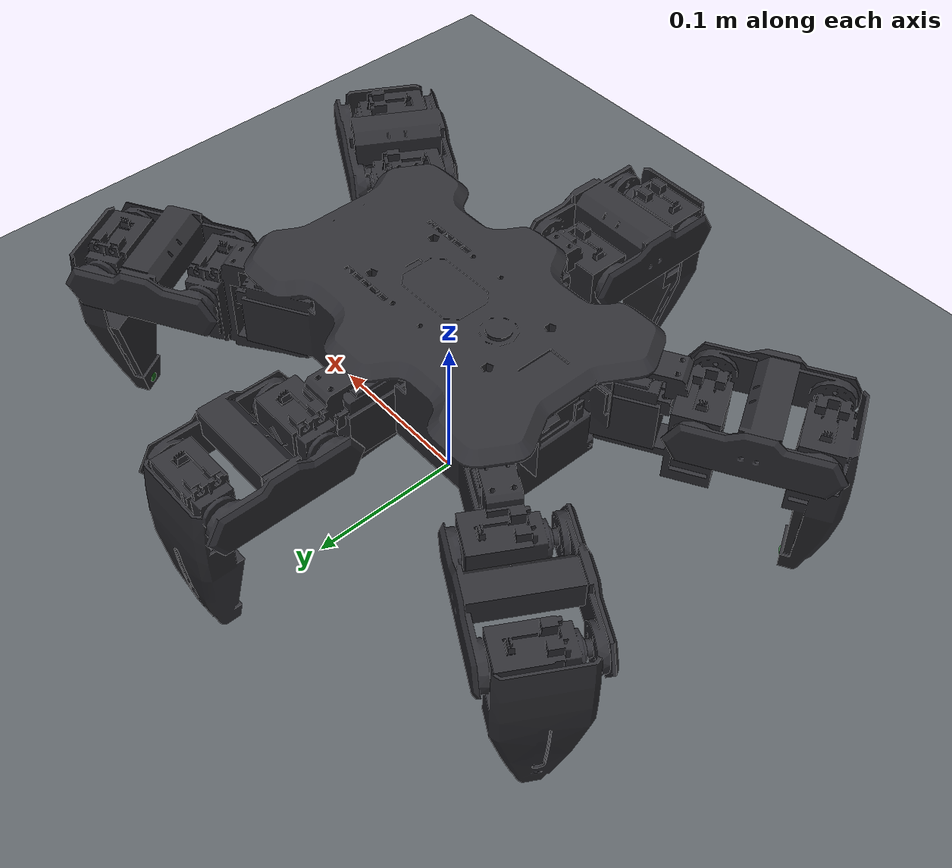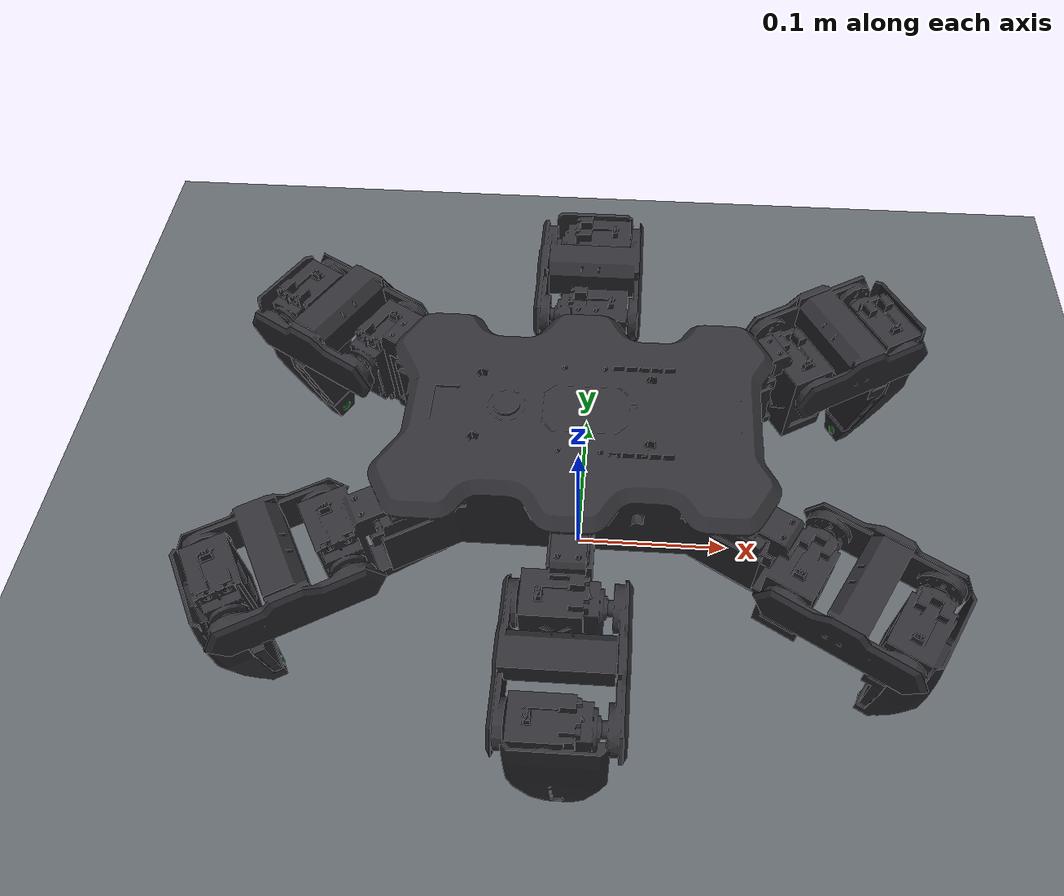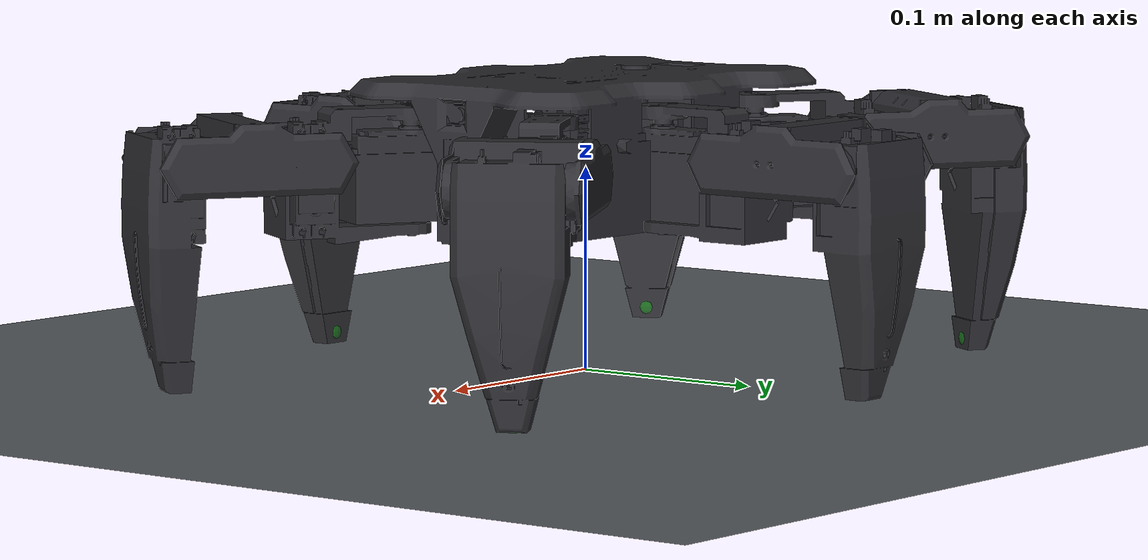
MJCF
<mujoco model="esapode">
  <!-- Generato da tools/genera_modelli.py (versione 2.1.2, Hexapod v2.1.0 v10): non modificare a mano. -->
  <compiler angle="radian" meshdir="../../robot/mesh" autolimits="true" />
  <option timestep="0.002" integrator="implicitfast" />
  <visual>
    <global offwidth="1280" offheight="720" />
  </visual>
  <custom>
    <numeric name="servo_stallo_nm" data="1.0787315" />
    <numeric name="servo_velocita_rad_s" data="7.4799825" />
    <numeric name="servo_smorzamento" data="0.14421578" />
    <numeric name="servo_kp" data="12.361352" />
    <numeric name="servo_semibanda_morta_rad" data="0.0039309217" />
    <numeric name="servo_saturazione_gradi" data="5" />
  </custom>
  <default>
    <default class="esapode">
      <!-- smorzamento = stallo / velocita a vuoto: la retta coppia-velocita del motore a piena tensione; kp = stallo / 5 gradi (saturazione, S); forcerange = stallo a 6 V; banda morta in sim/servo.py -->
      <joint type="hinge" damping="0.144216" armature="0" />
      <position kp="12.3614" forcerange="-1.07873 1.07873" />
      <geom friction="0.8 0.005 0.0001" solref="0.005 1" />
      <default class="visivo">
        <geom type="mesh" contype="0" conaffinity="0" group="2" density="0" material="scuro" />
      </default>
      <default class="urto">
        <geom group="3" rgba="0.9 0.5 0.1 0.4" />
      </default>
      <default class="piede">
        <geom group="3" rgba="1 0.4 0 1" />
      </default>
    </default>
  </default>
  <asset>
    <mesh name="corpo" file="corpo.stl" scale="0.001 0.001 0.001" />
    <mesh name="coxa" file="coxa.stl" scale="0.001 0.001 0.001" />
    <mesh name="femore" file="femore.stl" scale="0.001 0.001 0.001" />
    <mesh name="tibia" file="tibia.stl" scale="0.001 0.001 0.001" />
    <material name="scuro" rgba="0.18 0.18 0.2 1" />
    <texture name="griglia" type="2d" builtin="checker" rgb1="0.32 0.34 0.36" rgb2="0.42 0.44 0.46" width="512" height="512" />
    <material name="pavimento" texture="griglia" texrepeat="10 10" reflectance="0" />
  </asset>
  <worldbody>
    <light name="sole" pos="0 0 2" dir="0 0 -1" directional="true" />
    <geom name="pavimento" type="plane" size="0 0 0.05" material="pavimento" friction="0.8 0.005 0.0001" solref="0.005 1" />
    <body name="corpo" pos="0 0 0.11" childclass="esapode">
      <freejoint name="corpo" />
      <inertial pos="0.004479 0.000008 -0.010686" mass="1.42791" fullinertia="0.0027517 0.00564966 0.00731684 -2.5292e-06 2.18234e-05 -9.17945e-08" />
      <geom name="mesh_corpo" class="visivo" mesh="corpo" />
      <geom name="chiglia" class="urto" type="box" pos="0.00015 0 -0.036675" size="0.08755 0.0347 0.004725" />
      <geom name="scafo" class="urto" type="box" pos="0.00015 0 -0.012475" size="0.08755 0.048 0.019475" />
      <geom name="carapace" class="urto" type="box" pos="0.002425 0 0.0215" size="0.099575 0.056 0.0145" />
      <geom name="lobo_AS" class="urto" type="cylinder" pos="0.08 0.044 0.0215" size="0.0323 0.0145" />
      <geom name="lobo_MS" class="urto" type="cylinder" pos="0 0.048 0.0215" size="0.0323 0.0145" />
      <geom name="lobo_PS" class="urto" type="cylinder" pos="-0.08 0.044 0.0215" size="0.0323 0.0145" />
      <geom name="lobo_AD" class="urto" type="cylinder" pos="0.08 -0.044 0.0215" size="0.0323 0.0145" />
      <geom name="lobo_MD" class="urto" type="cylinder" pos="0 -0.048 0.0215" size="0.0323 0.0145" />
      <geom name="lobo_PD" class="urto" type="cylinder" pos="-0.08 -0.044 0.0215" size="0.0323 0.0145" />
      <site name="imu" pos="0.0525 0 -0.0059" size="0.005" rgba="0 0.6 1 1" />
      <body name="coxa_AS" pos="0.08 0.044 0" quat="0.965925826 0 0 0.258819045">
        <inertial pos="0.046381 -0.001983 -0.009636" mass="0.09408" fullinertia="4.08107e-05 6.21611e-05 4.48324e-05 1.33817e-06 4.98159e-06 -5.71956e-07" />
        <joint name="g_coxa_AS" axis="0 0 1" range="-0.610865 0.610865" />
        <geom name="mesh_coxa_AS" class="visivo" mesh="coxa" />
        <geom name="coxa_culla_AS" class="urto" type="box" pos="0.054 0.00045 -0.01155" size="0.01345 0.0254 0.0268" />
        <body name="femore_AS" pos="0.055 0 0">
          <inertial pos="0.03256 0.003123 0.003408" mass="0.05442" fullinertia="3.75087e-05 3.19617e-05 6.25141e-05 1.18337e-08 -1.55199e-07 7.09479e-07" />
          <joint name="g_femore_AS" axis="0 -1 0" range="-0.855211 1.48353" />
          <geom name="mesh_femore_AS" class="visivo" mesh="femore" pos="-0.055 0 0" />
          <geom name="femore_A_AS" class="urto" type="capsule" fromto="0 0.02055 0 0.065 0.02055 0" size="0.013" />
          <geom name="femore_B_AS" class="urto" type="capsule" fromto="0 -0.02055 0 0.065 -0.02055 0" size="0.013" />
          <body name="tibia_AS" pos="0.065 0 0">
            <inertial pos="0.002576 -0.001438 -0.02751" mass="0.11189" fullinertia="0.000115708 0.000105128 2.36561e-05 -2.3414e-07 2.96651e-06 2.30464e-06" />
            <joint name="g_ginocchio_AS" axis="0 -1 0" range="-1.064651 1.570796" />
            <geom name="mesh_tibia_AS" class="visivo" mesh="tibia" pos="-0.12 0 0" />
            <geom name="tibia_culla_AS" class="urto" type="box" pos="0.003634 0 -0.01005" size="0.016084 0.02615 0.0283" />
            <geom name="tibia_stinco_AS" class="urto" type="capsule" fromto="0.003634 0 -0.03835 0 0 -0.094" size="0.0117" />
            <geom name="piede_AS" class="piede" type="sphere" pos="0 0 -0.1044" size="0.0056" />
            <site name="punta_AS" pos="0 0 -0.11" size="0.002" />
            <site name="contatto_AS" type="sphere" size="0.0066" pos="0 0 -0.1044" rgba="0 1 0 0.3" />
          </body>
        </body>
      </body>
      <body name="coxa_MS" pos="0 0.048 0" quat="0.707106781 0 0 0.707106781">
        <inertial pos="0.046381 -0.001983 -0.009636" mass="0.09408" fullinertia="4.08107e-05 6.21611e-05 4.48324e-05 1.33817e-06 4.98159e-06 -5.71956e-07" />
        <joint name="g_coxa_MS" axis="0 0 1" range="-0.610865 0.610865" />
        <geom name="mesh_coxa_MS" class="visivo" mesh="coxa" />
        <geom name="coxa_culla_MS" class="urto" type="box" pos="0.054 0.00045 -0.01155" size="0.01345 0.0254 0.0268" />
        <body name="femore_MS" pos="0.055 0 0">
          <inertial pos="0.03256 0.003123 0.003408" mass="0.05442" fullinertia="3.75087e-05 3.19617e-05 6.25141e-05 1.18337e-08 -1.55199e-07 7.09479e-07" />
          <joint name="g_femore_MS" axis="0 -1 0" range="-0.855211 1.48353" />
          <geom name="mesh_femore_MS" class="visivo" mesh="femore" pos="-0.055 0 0" />
          <geom name="femore_A_MS" class="urto" type="capsule" fromto="0 0.02055 0 0.065 0.02055 0" size="0.013" />
          <geom name="femore_B_MS" class="urto" type="capsule" fromto="0 -0.02055 0 0.065 -0.02055 0" size="0.013" />
          <body name="tibia_MS" pos="0.065 0 0">
            <inertial pos="0.002576 -0.001438 -0.02751" mass="0.11189" fullinertia="0.000115708 0.000105128 2.36561e-05 -2.3414e-07 2.96651e-06 2.30464e-06" />
            <joint name="g_ginocchio_MS" axis="0 -1 0" range="-1.064651 1.570796" />
            <geom name="mesh_tibia_MS" class="visivo" mesh="tibia" pos="-0.12 0 0" />
            <geom name="tibia_culla_MS" class="urto" type="box" pos="0.003634 0 -0.01005" size="0.016084 0.02615 0.0283" />
            <geom name="tibia_stinco_MS" class="urto" type="capsule" fromto="0.003634 0 -0.03835 0 0 -0.094" size="0.0117" />
            <geom name="piede_MS" class="piede" type="sphere" pos="0 0 -0.1044" size="0.0056" />
            <site name="punta_MS" pos="0 0 -0.11" size="0.002" />
            <site name="contatto_MS" type="sphere" size="0.0066" pos="0 0 -0.1044" rgba="0 1 0 0.3" />
          </body>
        </body>
      </body>
      <body name="coxa_PS" pos="-0.08 0.044 0" quat="0.258819045 0 0 0.965925826">
        <inertial pos="0.046381 -0.001983 -0.009636" mass="0.09408" fullinertia="4.08107e-05 6.21611e-05 4.48324e-05 1.33817e-06 4.98159e-06 -5.71956e-07" />
        <joint name="g_coxa_PS" axis="0 0 1" range="-0.610865 0.610865" />
        <geom name="mesh_coxa_PS" class="visivo" mesh="coxa" />
        <geom name="coxa_culla_PS" class="urto" type="box" pos="0.054 0.00045 -0.01155" size="0.01345 0.0254 0.0268" />
        <body name="femore_PS" pos="0.055 0 0">
          <inertial pos="0.03256 0.003123 0.003408" mass="0.05442" fullinertia="3.75087e-05 3.19617e-05 6.25141e-05 1.18337e-08 -1.55199e-07 7.09479e-07" />
          <joint name="g_femore_PS" axis="0 -1 0" range="-0.855211 1.48353" />
          <geom name="mesh_femore_PS" class="visivo" mesh="femore" pos="-0.055 0 0" />
          <geom name="femore_A_PS" class="urto" type="capsule" fromto="0 0.02055 0 0.065 0.02055 0" size="0.013" />
          <geom name="femore_B_PS" class="urto" type="capsule" fromto="0 -0.02055 0 0.065 -0.02055 0" size="0.013" />
          <body name="tibia_PS" pos="0.065 0 0">
            <inertial pos="0.002576 -0.001438 -0.02751" mass="0.11189" fullinertia="0.000115708 0.000105128 2.36561e-05 -2.3414e-07 2.96651e-06 2.30464e-06" />
            <joint name="g_ginocchio_PS" axis="0 -1 0" range="-1.064651 1.570796" />
            <geom name="mesh_tibia_PS" class="visivo" mesh="tibia" pos="-0.12 0 0" />
            <geom name="tibia_culla_PS" class="urto" type="box" pos="0.003634 0 -0.01005" size="0.016084 0.02615 0.0283" />
            <geom name="tibia_stinco_PS" class="urto" type="capsule" fromto="0.003634 0 -0.03835 0 0 -0.094" size="0.0117" />
            <geom name="piede_PS" class="piede" type="sphere" pos="0 0 -0.1044" size="0.0056" />
            <site name="punta_PS" pos="0 0 -0.11" size="0.002" />
            <site name="contatto_PS" type="sphere" size="0.0066" pos="0 0 -0.1044" rgba="0 1 0 0.3" />
          </body>
        </body>
      </body>
      <body name="coxa_AD" pos="0.08 -0.044 0" quat="0.965925826 0 0 -0.258819045">
        <inertial pos="0.046381 -0.001983 -0.009636" mass="0.09408" fullinertia="4.08107e-05 6.21611e-05 4.48324e-05 1.33817e-06 4.98159e-06 -5.71956e-07" />
        <joint name="g_coxa_AD" axis="0 0 1" range="-0.610865 0.610865" />
        <geom name="mesh_coxa_AD" class="visivo" mesh="coxa" />
        <geom name="coxa_culla_AD" class="urto" type="box" pos="0.054 0.00045 -0.01155" size="0.01345 0.0254 0.0268" />
        <body name="femore_AD" pos="0.055 0 0">
          <inertial pos="0.03256 0.003123 0.003408" mass="0.05442" fullinertia="3.75087e-05 3.19617e-05 6.25141e-05 1.18337e-08 -1.55199e-07 7.09479e-07" />
          <joint name="g_femore_AD" axis="0 -1 0" range="-0.855211 1.48353" />
          <geom name="mesh_femore_AD" class="visivo" mesh="femore" pos="-0.055 0 0" />
          <geom name="femore_A_AD" class="urto" type="capsule" fromto="0 0.02055 0 0.065 0.02055 0" size="0.013" />
          <geom name="femore_B_AD" class="urto" type="capsule" fromto="0 -0.02055 0 0.065 -0.02055 0" size="0.013" />
          <body name="tibia_AD" pos="0.065 0 0">
            <inertial pos="0.002576 -0.001438 -0.02751" mass="0.11189" fullinertia="0.000115708 0.000105128 2.36561e-05 -2.3414e-07 2.96651e-06 2.30464e-06" />
            <joint name="g_ginocchio_AD" axis="0 -1 0" range="-1.064651 1.570796" />
            <geom name="mesh_tibia_AD" class="visivo" mesh="tibia" pos="-0.12 0 0" />
            <geom name="tibia_culla_AD" class="urto" type="box" pos="0.003634 0 -0.01005" size="0.016084 0.02615 0.0283" />
            <geom name="tibia_stinco_AD" class="urto" type="capsule" fromto="0.003634 0 -0.03835 0 0 -0.094" size="0.0117" />
            <geom name="piede_AD" class="piede" type="sphere" pos="0 0 -0.1044" size="0.0056" />
            <site name="punta_AD" pos="0 0 -0.11" size="0.002" />
            <site name="contatto_AD" type="sphere" size="0.0066" pos="0 0 -0.1044" rgba="0 1 0 0.3" />
          </body>
        </body>
      </body>
      <body name="coxa_MD" pos="0 -0.048 0" quat="0.707106781 0 0 -0.707106781">
        <inertial pos="0.046381 -0.001983 -0.009636" mass="0.09408" fullinertia="4.08107e-05 6.21611e-05 4.48324e-05 1.33817e-06 4.98159e-06 -5.71956e-07" />
        <joint name="g_coxa_MD" axis="0 0 1" range="-0.610865 0.610865" />
        <geom name="mesh_coxa_MD" class="visivo" mesh="coxa" />
        <geom name="coxa_culla_MD" class="urto" type="box" pos="0.054 0.00045 -0.01155" size="0.01345 0.0254 0.0268" />
        <body name="femore_MD" pos="0.055 0 0">
          <inertial pos="0.03256 0.003123 0.003408" mass="0.05442" fullinertia="3.75087e-05 3.19617e-05 6.25141e-05 1.18337e-08 -1.55199e-07 7.09479e-07" />
          <joint name="g_femore_MD" axis="0 -1 0" range="-0.855211 1.48353" />
          <geom name="mesh_femore_MD" class="visivo" mesh="femore" pos="-0.055 0 0" />
          <geom name="femore_A_MD" class="urto" type="capsule" fromto="0 0.02055 0 0.065 0.02055 0" size="0.013" />
          <geom name="femore_B_MD" class="urto" type="capsule" fromto="0 -0.02055 0 0.065 -0.02055 0" size="0.013" />
          <body name="tibia_MD" pos="0.065 0 0">
            <inertial pos="0.002576 -0.001438 -0.02751" mass="0.11189" fullinertia="0.000115708 0.000105128 2.36561e-05 -2.3414e-07 2.96651e-06 2.30464e-06" />
            <joint name="g_ginocchio_MD" axis="0 -1 0" range="-1.064651 1.570796" />
            <geom name="mesh_tibia_MD" class="visivo" mesh="tibia" pos="-0.12 0 0" />
            <geom name="tibia_culla_MD" class="urto" type="box" pos="0.003634 0 -0.01005" size="0.016084 0.02615 0.0283" />
            <geom name="tibia_stinco_MD" class="urto" type="capsule" fromto="0.003634 0 -0.03835 0 0 -0.094" size="0.0117" />
            <geom name="piede_MD" class="piede" type="sphere" pos="0 0 -0.1044" size="0.0056" />
            <site name="punta_MD" pos="0 0 -0.11" size="0.002" />
            <site name="contatto_MD" type="sphere" size="0.0066" pos="0 0 -0.1044" rgba="0 1 0 0.3" />
          </body>
        </body>
      </body>
      <body name="coxa_PD" pos="-0.08 -0.044 0" quat="0.258819045 0 0 -0.965925826">
        <inertial pos="0.046381 -0.001983 -0.009636" mass="0.09408" fullinertia="4.08107e-05 6.21611e-05 4.48324e-05 1.33817e-06 4.98159e-06 -5.71956e-07" />
        <joint name="g_coxa_PD" axis="0 0 1" range="-0.610865 0.610865" />
        <geom name="mesh_coxa_PD" class="visivo" mesh="coxa" />
        <geom name="coxa_culla_PD" class="urto" type="box" pos="0.054 0.00045 -0.01155" size="0.01345 0.0254 0.0268" />
        <body name="femore_PD" pos="0.055 0 0">
          <inertial pos="0.03256 0.003123 0.003408" mass="0.05442" fullinertia="3.75087e-05 3.19617e-05 6.25141e-05 1.18337e-08 -1.55199e-07 7.09479e-07" />
          <joint name="g_femore_PD" axis="0 -1 0" range="-0.855211 1.48353" />
          <geom name="mesh_femore_PD" class="visivo" mesh="femore" pos="-0.055 0 0" />
          <geom name="femore_A_PD" class="urto" type="capsule" fromto="0 0.02055 0 0.065 0.02055 0" size="0.013" />
          <geom name="femore_B_PD" class="urto" type="capsule" fromto="0 -0.02055 0 0.065 -0.02055 0" size="0.013" />
          <body name="tibia_PD" pos="0.065 0 0">
            <inertial pos="0.002576 -0.001438 -0.02751" mass="0.11189" fullinertia="0.000115708 0.000105128 2.36561e-05 -2.3414e-07 2.96651e-06 2.30464e-06" />
            <joint name="g_ginocchio_PD" axis="0 -1 0" range="-1.064651 1.570796" />
            <geom name="mesh_tibia_PD" class="visivo" mesh="tibia" pos="-0.12 0 0" />
            <geom name="tibia_culla_PD" class="urto" type="box" pos="0.003634 0 -0.01005" size="0.016084 0.02615 0.0283" />
            <geom name="tibia_stinco_PD" class="urto" type="capsule" fromto="0.003634 0 -0.03835 0 0 -0.094" size="0.0117" />
            <geom name="piede_PD" class="piede" type="sphere" pos="0 0 -0.1044" size="0.0056" />
            <site name="punta_PD" pos="0 0 -0.11" size="0.002" />
            <site name="contatto_PD" type="sphere" size="0.0066" pos="0 0 -0.1044" rgba="0 1 0 0.3" />
          </body>
        </body>
      </body>
    </body>
  </worldbody>
  <actuator>
    <position name="coxa_AS" joint="g_coxa_AS" class="esapode" ctrlrange="-1.572369 1.572369" />
    <position name="femore_AS" joint="g_femore_AS" class="esapode" ctrlrange="-1.223303 1.921435" />
    <position name="ginocchio_AS" joint="g_ginocchio_AS" class="esapode" ctrlrange="-1.397836 1.746902" />
    <position name="coxa_MS" joint="g_coxa_MS" class="esapode" ctrlrange="-1.572369 1.572369" />
    <position name="femore_MS" joint="g_femore_MS" class="esapode" ctrlrange="-1.223303 1.921435" />
    <position name="ginocchio_MS" joint="g_ginocchio_MS" class="esapode" ctrlrange="-1.397836 1.746902" />
    <position name="coxa_PS" joint="g_coxa_PS" class="esapode" ctrlrange="-1.572369 1.572369" />
    <position name="femore_PS" joint="g_femore_PS" class="esapode" ctrlrange="-1.223303 1.921435" />
    <position name="ginocchio_PS" joint="g_ginocchio_PS" class="esapode" ctrlrange="-1.397836 1.746902" />
    <position name="coxa_AD" joint="g_coxa_AD" class="esapode" ctrlrange="-1.572369 1.572369" />
    <position name="femore_AD" joint="g_femore_AD" class="esapode" ctrlrange="-1.223303 1.921435" />
    <position name="ginocchio_AD" joint="g_ginocchio_AD" class="esapode" ctrlrange="-1.397836 1.746902" />
    <position name="coxa_MD" joint="g_coxa_MD" class="esapode" ctrlrange="-1.572369 1.572369" />
    <position name="femore_MD" joint="g_femore_MD" class="esapode" ctrlrange="-1.223303 1.921435" />
    <position name="ginocchio_MD" joint="g_ginocchio_MD" class="esapode" ctrlrange="-1.397836 1.746902" />
    <position name="coxa_PD" joint="g_coxa_PD" class="esapode" ctrlrange="-1.572369 1.572369" />
    <position name="femore_PD" joint="g_femore_PD" class="esapode" ctrlrange="-1.223303 1.921435" />
    <position name="ginocchio_PD" joint="g_ginocchio_PD" class="esapode" ctrlrange="-1.397836 1.746902" />
  </actuator>
  <sensor>
    <touch name="contatto_AS" site="contatto_AS" />
    <touch name="contatto_MS" site="contatto_MS" />
    <touch name="contatto_PS" site="contatto_PS" />
    <touch name="contatto_AD" site="contatto_AD" />
    <touch name="contatto_MD" site="contatto_MD" />
    <touch name="contatto_PD" site="contatto_PD" />
    <accelerometer name="imu_acc" site="imu" />
    <gyro name="imu_gyro" site="imu" />
    <framequat name="imu_quat" objtype="site" objname="imu" />
  </sensor>
  <keyframe>
    <key name="in_piedi" qpos="0 0 0.100088444 1 0 0 0 0 0.127463484 -0.305425805 0 0.127463484 -0.305425805 0 0.127463484 -0.305425805 0 0.127463484 -0.305425805 0 0.127463484 -0.305425805 0 0.127463484 -0.305425805" ctrl="0 0.127463484 -0.305425805 0 0.127463484 -0.305425805 0 0.127463484 -0.305425805 0 0.127463484 -0.305425805 0 0.127463484 -0.305425805 0 0.127463484 -0.305425805" />
  </keyframe>
</mujoco>
